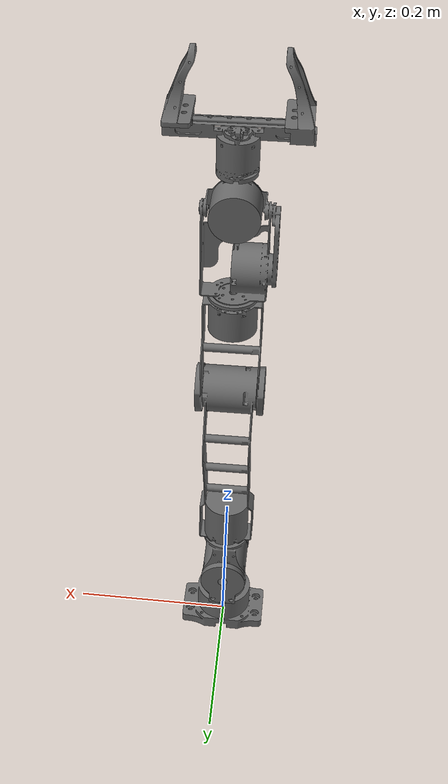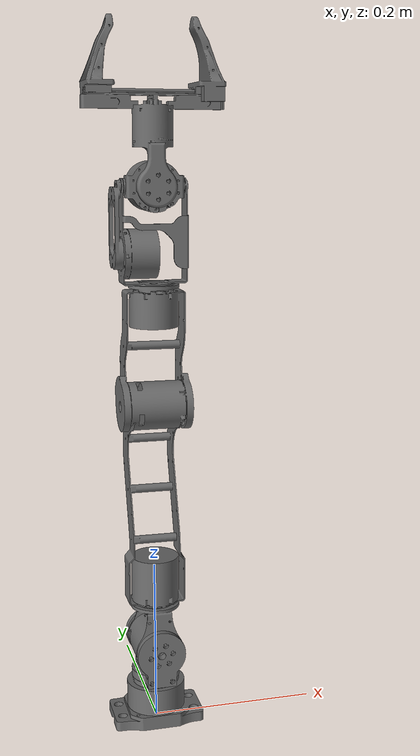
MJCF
<mujoco model="openarm">
  <default>
    <default class="robot">
      <default class="j">
        <joint />
        <motor />
      </default>
      <default class="visual">
        <geom material="visualgeom" contype="0" conaffinity="0" group="2" />
      </default>
      <default class="collision">
        <geom condim="6" friction="0.8 0.02 0.01" group="3" />
      </default>
    </default>
  </default>

  <compiler angle="radian" meshdir="./meshes"/>
  <option timestep="0.0002" integrator="RK4" />

  <extension>
    <plugin plugin="mujoco.pid">
      <instance name="rev1_pid">
        <config key="kp" value="250.0"/>
        <config key ="ki" value="10.0"/>
        <config key="kd" value="2"/>
        <config key="slewmax" value="3" />
        <config key="imax" value="1"/>
      </instance>
      <instance name="rev2_pid">
        <config key="kp" value="140.0"/>
        <config key ="ki" value="10.0"/>
        <config key="kd" value="7"/>
        <config key="slewmax" value="3" />
        <config key="imax" value="1"/>
      </instance>
      <instance name="rev3_pid">
        <config key="kp" value="200.0"/>
        <config key ="ki" value="10.0"/>
        <config key="kd" value="1"/>
        <config key="slewmax" value="3" />
        <config key="imax" value="1"/>
      </instance>
      <instance name="rev4_pid">
        <config key="kp" value="150.0"/>
        <config key ="ki" value="10.0"/>
        <config key="kd" value="1"/>
        <config key="slewmax" value="3" />
        <config key="imax" value="1"/>
      </instance>
      <instance name="rev5_pid">
        <config key="kp" value="135.0"/>
        <config key ="ki" value="10.0"/>
        <config key="kd" value="1"/>
        <config key="slewmax" value="3" />
        <config key="imax" value="1"/>
      </instance>
      <instance name="rev6_pid">
        <config key="kp" value="115.0"/>
        <config key ="ki" value="10.0"/>
        <config key="kd" value="1"/>
        <config key="slewmax" value="3" />
        <config key="imax" value="1"/>
      </instance>
      <instance name="rev7_pid">
        <config key="kp" value="70.0"/>
        <config key ="ki" value="20.0"/>
        <config key="kd" value="4"/>
        <config key="slewmax" value="3" />
        <config key="imax" value="1"/>
      </instance>
    </plugin>
  </extension>

  <asset>
    <material name="gray" rgba="0.4117647058823529 0.4117647058823529 0.4117647058823529 1.0" />
    <material name="default_material" rgba="0.7 0.7 0.7 1" />
    <mesh name="link1.stl" file="link1.stl" />
    <mesh name="link2.stl" file="link2.stl" />
    <mesh name="link3.stl" file="link3.stl" />
    <mesh name="link4.stl" file="link4.stl" />
    <mesh name="link5.stl" file="link5.stl" />
    <mesh name="link6_rightarm.stl" file="link6_rightarm.stl" />
    <mesh name="link7_rightarm.stl" file="link7_rightarm.stl" />
    <mesh name="link8.stl" file="link8.stl" />
    <mesh name="left_jaw.stl" file="left_jaw.stl" />
    <mesh name="right_jaw.stl" file="right_jaw.stl" />
  </asset>

  <worldbody>
    <geom name="link1_visual" pos="0.0 0.0 -0.0007" material="gray" type="mesh" mesh="link1.stl" class="visual" />
    <body name="link2" pos="0.0 0.0 0.05325">
      <joint name="rev1" type="hinge" class="j" range="-2.0943951023931953 2.0943951023931953" axis="0 0 1" />
      <inertial pos="-0.000225878 -0.00183836 0.0278368" mass="0.16257504134917358" diaginertia="0.00023903110213294374 0.00010490798314778774 0.00019737368685935776" />
      <geom name="link2_collision" pos="0.0 0.0 0.0371236" type="box" size="0.0295000000074506 0.04100000000000001 0.0371235749318674" class="collision" />
      <geom name="link2_visual" pos="0.0 0.0 -0.05395" material="gray" type="mesh" mesh="link2.stl" class="visual" />
      <body name="link3" pos="0.0 -0.02975 0.04475" quat="0.5 -0.5000000000000001 0.4999999999999999 0.5">
        <joint name="rev2" type="hinge" class="j" range="-1.5707963267948966 1.5707963267948966" axis="0 0 1" />
        <inertial pos="-0.00688022 0.0 0.0282752" quat="0.7071067811865476 0.7071067811865475 0.0 0.0" mass="0.4201676469910031" diaginertia="0.00020256001126230057 0.0002970624991387495 0.00032889994351244413" />
        <geom name="link3_collision" pos="-0.0164466 -0.00045542 0.02975" quat="0.7071067811865476 0.7071067811865475 0.0 0.0" type="box" size="0.044945509017209395 0.03499999999999991 0.02951638473901506" class="collision" />
        <geom name="link3_visual" pos="0.0 0.0987 0.02975" quat="0.7071067811865476 0.7071067811865475 0.0 0.0" material="gray" type="mesh" mesh="link3.stl" class="visual" />
        <body name="link4" pos="-0.0612477 -0.000536432 0.02975" quat="0.5021847446228237 -0.5021847446228281 0.4978056671715473 -0.4978056671715428">
          <joint name="rev3" type="hinge" class="j" range="-3.6651914291880923 0.5235987755982988" axis="0 0 1" />
          <inertial pos="0.000781326 -0.0019461 -0.132411" quat="4.348699209552085e-17 0.7101964766624661 -4.310778323155519e-17 0.7040035259401896" mass="0.819475539373447" diaginertia="0.00044078452033976287 0.009208791480530413 0.009170539316023695" />
          <geom name="link4_collision" pos="0.000266276 -0.0125642 -0.132604" quat="4.348699209552085e-17 0.7101964766624661 -4.310778323155519e-17 0.7040035259401896" type="box" size="0.13792336888575168 0.041057145857910315 0.03593286589662931" class="collision" />
          <geom name="link4_visual" pos="-0.0986962 0.0 0.0621144" quat="4.348699209552085e-17 0.7101964766624661 -4.310778323155519e-17 0.7040035259401896" material="gray" type="mesh" mesh="link4.stl" class="visual" />
          <body name="link5" pos="0.0297547 0.0 -0.24175" quat="-0.001005087997693152 -0.707106066865571 0.0010050879976989252 -0.7071060668655987">
            <joint name="rev4" type="hinge" class="j" range="-0.3490658503988659 2.792526803190927" axis="0 0 1" />
            <inertial pos="-0.0831891 0.00251789 -0.0290107" quat="0.999990411794371 0.0 -0.004379077451273085 0.0" mass="0.4086748254352304" diaginertia="0.00031417157425298747 0.001221711435313989 0.0010755135067660488" />
            <geom name="link5_collision" pos="-0.0542814 0.00265291 -0.0302022" quat="0.999990411794371 0.0 -0.004379077451273042 0.0" type="box" size="0.08413606610312914 0.032152775241995855 0.041289299835704736" class="collision" />
            <geom name="link5_visual" pos="0.303864 0.0 -0.128451" quat="0.999990411794371 0.0 -0.00437907745127333 0.0" material="gray" type="mesh" mesh="link5.stl" class="visual" />
            <body name="link6" pos="-0.133937 0.00188408 -0.0297547" quat="0.34763733296752003 0.6205789736203802 0.33894208576135054 0.6157501804524711">
              <joint name="rev5" type="hinge" class="j" range="-2.0943951023931953 2.0943951023931953" axis="0 0 1" />
              <inertial pos="-0.00898536 -0.0135065 -0.0438611" quat="0.34614974610283633 -0.6232694411131999 -0.34046116671956284 -0.6130267131237719" mass="0.3448471958049249" diaginertia="0.00019355980999748924 0.0003486912031865755 0.00028774975153756256" />
              <geom name="link6_collision" pos="-0.00260794 -0.00312921 -0.0652641" quat="0.34614974610283633 -0.6232694411131999 -0.34046116671956284 -0.6130267131237719" type="box" size="0.06557176502352383 0.029767391626508724 0.044085980975409396" class="collision" />
              <geom name="link6_visual" pos="-0.0485412 -0.0860404 0.437784" quat="0.3461497461028344 -0.623269441113201 -0.34046116671956095 -0.613026713123773" material="gray" type="mesh" mesh="link6_rightarm.stl" class="visual" />
              <body name="link7" pos="-0.0187648 -0.0301352 -0.12105" quat="0.34763733296609317 -0.6205789736211915 -0.33894208575997453 -0.6157501804532163">
                <joint name="rev6" type="hinge" class="j" range="-1.5707963267948966 1.5707963267948966" axis="0 0 1" />
                <inertial pos="5.99432e-05 0.0041433 0.0354274" quat="0.9999904117943706 0.0 -0.004379077451370153 0.0" mass="0.2782138078738053" diaginertia="0.00010424153315648891 0.00012313550743283462 9.221319958512582e-05" />
                <geom name="link7_collision" pos="-0.000318103 0.0022839 0.0340014" quat="0.9999904117943706 0.0 -0.004379077451370189 0.0" type="box" size="0.029163701087566437 0.022164583493768306 0.04133800811205876" class="collision" />
                <geom name="link7_visual" pos="0.558839 -0.00358671 -0.0631962" quat="0.9999904117943706 0.0 -0.004379077451370058 0.0" material="gray" type="mesh" mesh="link7_rightarm.stl" class="visual" />
                <body name="link8" pos="-0.000217313 -0.0154485 0.0355" quat="0.7070607328647779 -0.707104291841532 0.0018762887137826994 -0.008069698920733642">
                  <joint name="rev7" type="hinge" class="j" range="-0.9599310885968813 0.9599310885968813" axis="0 0 1" />
                  <inertial pos="-0.0607602 -0.000341696 0.00876618" quat="0.7070457370075183 0.7071328498167253 -0.004972544435576203 0.004973157086628345" mass="0.31261452743802165" diaginertia="0.00023465661366788053 0.0005065459365215377 0.0003737029250058136" />
                  <geom name="link8_collision" pos="-0.042694 -0.000543176 0.0110286" quat="0.7070457370075183 0.7071328498167253 -0.004972544435576203 0.004973157086628345" type="box" size="0.06519399835871827 0.02590443846344463 0.08006183817204335" class="collision" />
                  <geom name="link8_visual" pos="0.557948 0.103587 0.019724" quat="0.7070457370075183 0.7071328498167253 -0.004972544435576206 0.0049731570866283475" material="gray" type="mesh" mesh="link8.stl" class="visual" />
                  <body name="link_left_jaw" pos="-0.1071 0.0768568 0.0132053" quat="0.707060732864742 0.7071042918415676 -0.0018762887137609321 0.00806969892075141">
                    <joint name="left_pris1" type="slide" class="j" range="0.0 0.0451" axis="0 0 1" />
                    <inertial pos="-0.0187138 0.00217075 0.0159499" quat="0.9999904117943706 0.0 -0.004379077451349346 0.0" mass="0.04297897856394934" diaginertia="1.1771768742932353e-05 2.3837354480794824e-05 3.0474590214086944e-05" />
                    <geom name="link_left_jaw_collision" pos="0.665265 -0.00286677 -0.0209282" quat="0.9999904117943706 0.0 -0.004379077451349382 0.0" type="mesh" mesh="left_jaw.stl" class="collision" />
                    <geom name="link_left_jaw_visual" pos="0.665265 -0.00286677 -0.0209282" quat="0.9999904117943706 0.0 -0.004379077451349348 0.0" material="gray" type="mesh" mesh="left_jaw.stl" class="visual" />
                  </body>
                  <body name="link_right_jaw" pos="-0.10571 -0.0781373 0.0132053" quat="0.7070607328648157 0.7071042918414913 -0.0018762887134541077 0.008069698921057647">
                    <joint name="right_pris2" type="slide" class="j" range="0.0 0.0451" axis="0 0 -1" />
                    <inertial pos="-0.0187844 -0.00272415 -0.0159503" quat="0.999990411794363 0.0 -0.004379077453115355 0.0" mass="0.042981665301134515" diaginertia="1.1561293087621594e-05 2.370165527871047e-05 3.039652946542647e-05" />
                    <geom name="link_right_jaw_collision" pos="0.665265 -0.00286677 -0.175928" quat="0.999990411794363 0.0 -0.004379077453115391 0.0" type="mesh" mesh="right_jaw.stl" class="collision" />
                    <geom name="link_right_jaw_visual" pos="0.665265 -0.00286677 -0.175928" quat="0.999990411794363 0.0 -0.004379077453115357 0.0" material="gray" type="mesh" mesh="right_jaw.stl" class="visual" />
                  </body>
                </body>
              </body>
            </body>
          </body>
        </body>
      </body>
      <site name="link1_site" />
      <camera name="front_camera" mode="track" fovy="90.0" quat="4.329780281177467e-17 4.329780281177466e-17 0.7071067811865475 0.7071067811865476" pos="0.0 2.0 0.5" />
      <camera name="side_camera" mode="track" fovy="90.0" quat="-0.5 -0.4999999999999999 0.5 0.5000000000000001" pos="-2.0 0.0 0.5" />
    </body>
  </worldbody>

  <tendon>
    <fixed name="split">
      <joint joint="left_pris1" coef="0.5"/>
      <joint joint="right_pris2" coef="0.5"/>
    </fixed>
  </tendon>
  <equality>
    <joint joint1="left_pris1" joint2="right_pris2" solimp="0.95 0.99 0.001" solref="0.005 1"/>
  </equality>

  <actuator>
    <plugin joint="rev1" name="rev1_actuator" plugin="mujoco.pid" instance="rev1_pid" actdim="2" ctrllimited="true" ctrlrange="-2.356194 2.356194"/>
    <plugin joint="rev2" name="rev2_actuator" plugin="mujoco.pid" instance="rev2_pid" actdim="2" ctrllimited="true" ctrlrange="-1.5 1.5"/>
    <plugin joint="rev3" name="rev3_actuator" plugin="mujoco.pid" instance="rev3_pid" actdim="2" ctrllimited="true" ctrlrange="-2.0944 2.0944"/>
    <plugin joint="rev4" name="rev4_actuator" plugin="mujoco.pid" instance="rev4_pid" actdim="2" ctrllimited="true" ctrlrange="-0.3490658503988659 2.792526803190927"/>
    <plugin joint="rev5" name="rev5_actuator" plugin="mujoco.pid" instance="rev5_pid" actdim="2" ctrllimited="true" ctrlrange="-2.0944 2.0944"/>
    <plugin joint="rev6" name="rev6_actuator" plugin="mujoco.pid" instance="rev6_pid" actdim="2" ctrllimited="true" ctrlrange="-0.3 1.5708"/>
    <plugin joint="rev7" name="rev7_actuator" plugin="mujoco.pid" instance="rev7_pid" actdim="2" ctrllimited="true" ctrlrange="-0.9599310885968813 0.9599310885968813"/>
    <position name="gripper_actuator" tendon="split" kv="20.5" kp="100.0" ctrllimited="true" ctrlrange="0 0.0455"/>

  </actuator>

  <contact>
    <exclude body1="link2" body2="link3" />
    <exclude body1="link3" body2="link4" />
    <exclude body1="link4" body2="link5" />
    <exclude body1="link5" body2="link6" />
    <exclude body1="link6" body2="link7" />
    <exclude body1="link6" body2="link8" />
    <exclude body1="link7" body2="link8" />
    <exclude body1="link8" body2="link_left_jaw" />
    <exclude body1="link8" body2="link_right_jaw" />
    <exclude body1="link_left_jaw" body2="link_right_jaw" />
  </contact>

  <sensor>
    <framepos name="base_link_pos" objtype="site" objname="link1_site" />
    <framequat name="base_link_quat" objtype="site" objname="link1_site" />
    <framelinvel name="base_link_vel" objtype="site" objname="link1_site" />
    <frameangvel name="base_link_ang_vel" objtype="site" objname="link1_site" />
  </sensor>
</mujoco>
